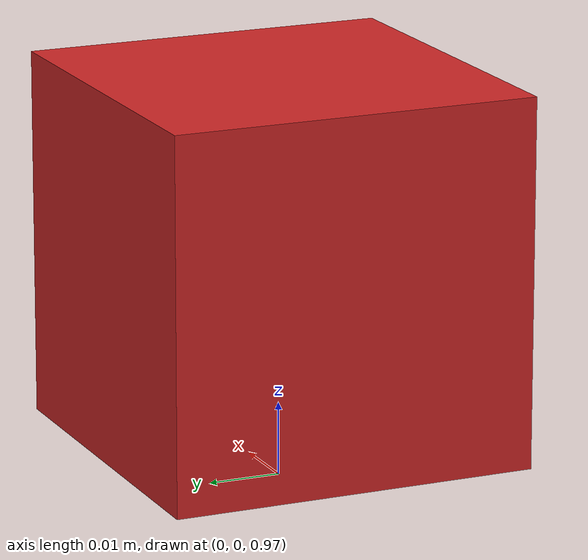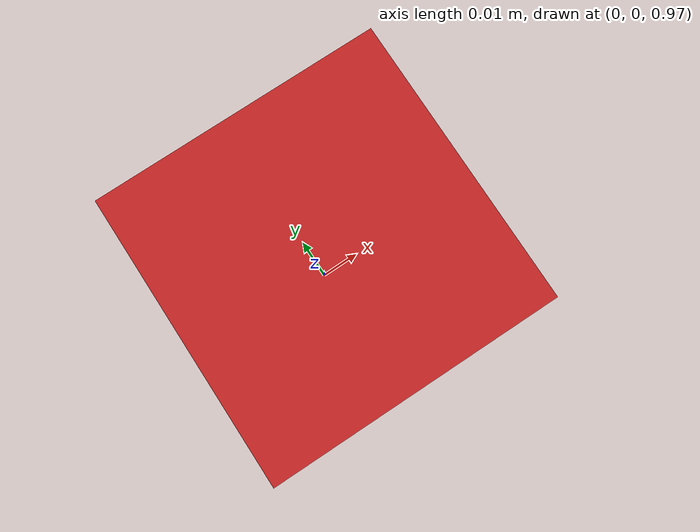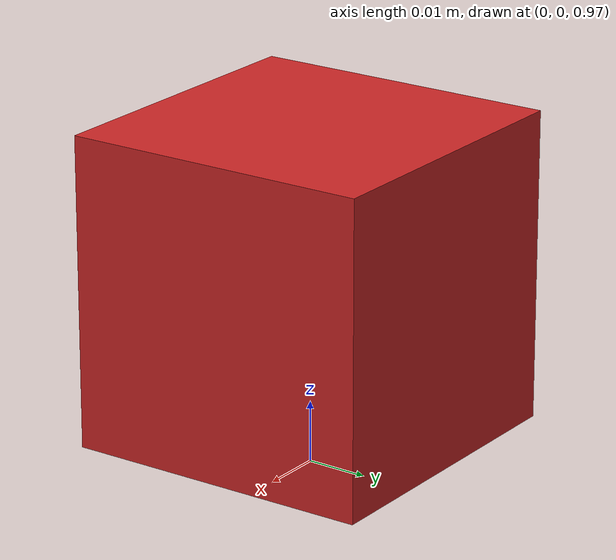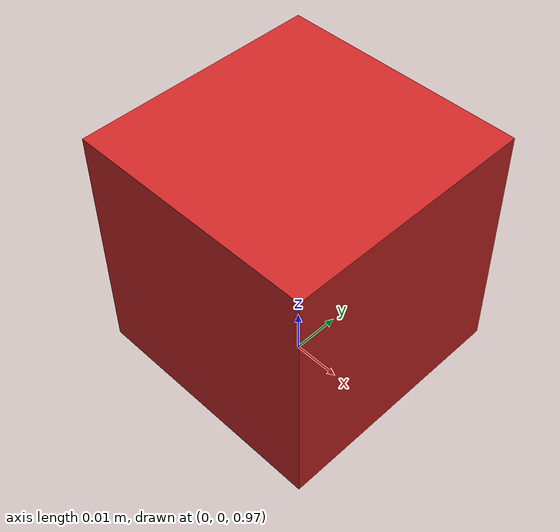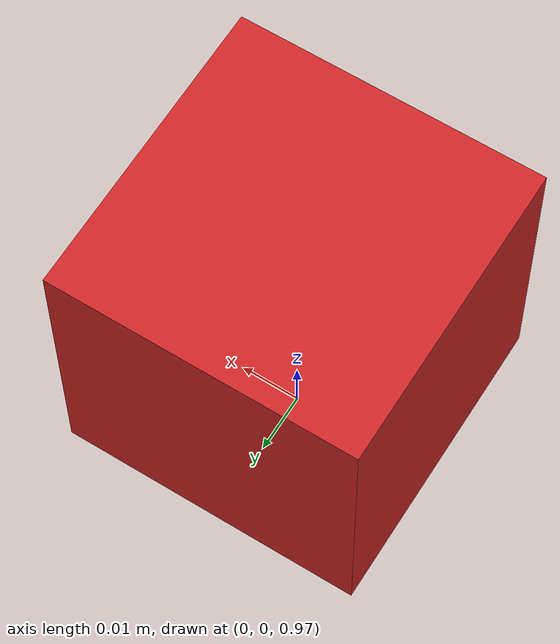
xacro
<?xml version="1.0" ?>

<robot name="camera" xmlns:xacro="http://www.ros.org/wiki/xacro">

<xacro:property name="camera_value" value="0.05"/> <!-- Size of square 'camera' box -->

<!-- "Robot" for camera description -->

  <link name="world"/>

  <joint name="fixed" type="fixed">
    <origin xyz="0.0 0.0 1.0" rpy="0.0 1.570796 0.0"/>
    <parent link="world"/>
    <child link="camera_link"/>
  </joint>

  <!-- Camera -->
  <link name="camera_link">
    <collision>
      <origin xyz="0 0 0" rpy="0 0 0"/>
      <geometry>
    <box size="${camera_value} ${camera_value} ${camera_value}"/>
      </geometry>
    </collision>

    <visual>
      <origin xyz="0 0 0" rpy="0 0 0"/>
      <geometry>
    <box size="${camera_value} ${camera_value} ${camera_value}"/>
      </geometry>
      <material name="red"/>
    </visual>

    <inertial>
      <mass value="1e-5" />
      <origin xyz="0 0 0" rpy="0 0 0"/>
      <inertia ixx="1e-6" ixy="0" ixz="0" iyy="1e-6" iyz="0" izz="1e-6" />
    </inertial>
  </link>

  <!-- camera -->
  <gazebo reference="camera_link">
    <sensor type="camera" name="camera1">
      <update_rate>20.0</update_rate>
      <camera name="head">
        <horizontal_fov>1.3962634</horizontal_fov>
        <image>
          <width>400</width>
          <height>400</height>
          <format>R8G8B8</format>
        </image>
        <clip>
          <near>0.02</near>
          <far>300</far>
        </clip>
      </camera>
      <plugin name="camera_controller" filename="libgazebo_ros_camera.so">
        <alwaysOn>true</alwaysOn>
        <updateRate>0.0</updateRate>
        <cameraName>camera1</cameraName>
        <imageTopicName>image_raw</imageTopicName>
        <cameraInfoTopicName>camera_info</cameraInfoTopicName>
        <frameName>camera_link_optical</frameName>
        <!-- setting hackBaseline to anything but 0.0 will cause a misalignment
            between the gazebo sensor image and the frame it is supposed to
            be attached to -->
        <hackBaseline>0.0</hackBaseline>
        <distortionK1>0.0</distortionK1>
        <distortionK2>0.0</distortionK2>
        <distortionK3>0.0</distortionK3>
        <distortionT1>0.0</distortionT1>
        <distortionT2>0.0</distortionT2>
        <CxPrime>0</CxPrime>
        <Cx>0.0</Cx>
        <Cy>0.0</Cy>
        <focalLength>0.0</focalLength>
      </plugin>
    </sensor>
  </gazebo>

</robot>
